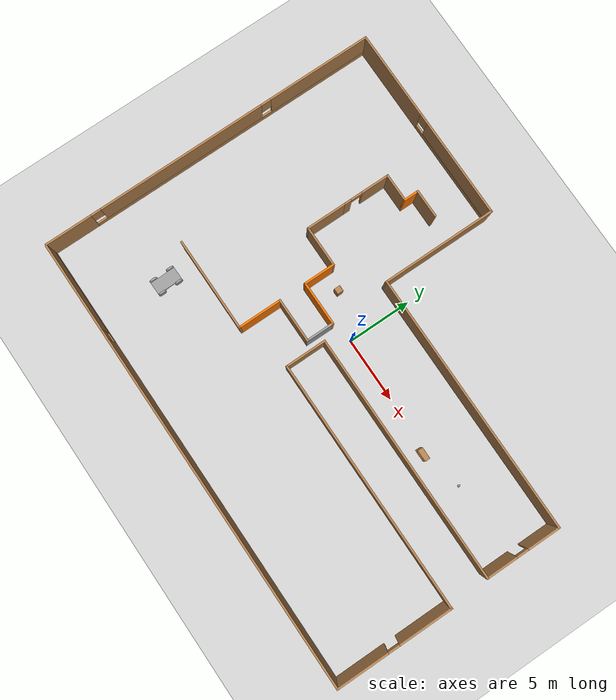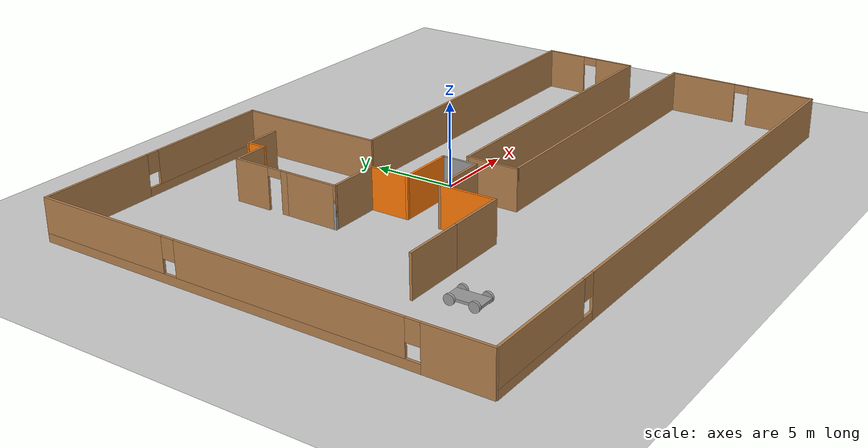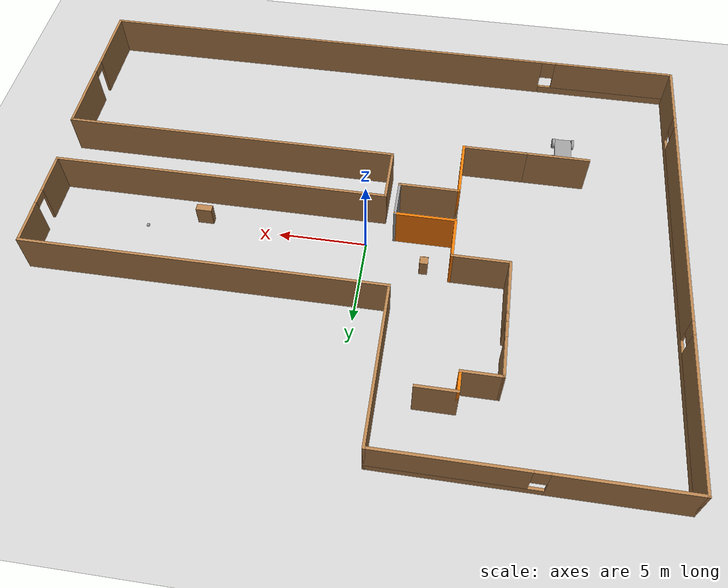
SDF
<sdf version="1.6">
 <world name="default">
  <light name="sun" type="directional">
   <pose>0 0 10 0 -0 0</pose>
   <diffuse>0.8 0.8 0.8 1</diffuse>
   <specular>0.2 0.2 0.2 1</specular>
   <attenuation>
    <range>1000</range>
    <constant>0.9</constant>
    <linear>0.01</linear>
    <quadratic>0.001</quadratic>
   </attenuation>
   <direction>-0.5 0.1 -0.9</direction>
  </light>
  <model name="ground_plane">
   <static>1</static>
   <link name="link">
    <collision name="collision">
     <geometry><plane><normal>0 0 1</normal><size>100 100</size></plane></geometry>
     <surface>
      <contact><collide_bitmask>65535</collide_bitmask></contact>
      <friction><ode><mu>100</mu><mu2>50</mu2></ode></friction>
     </surface>
    </collision>
    <visual name="visual">
     <cast_shadows>0</cast_shadows>
     <geometry><plane><normal>0 0 1</normal><size>100 100</size></plane></geometry>
     <material>
      <script><uri>file://media/materials/scripts/gazebo.material</uri><name>Gazebo/Grey</name></script>
     </material>
    </visual>
   </link>
  </model>
  <gravity>0 0 -9.8</gravity>
  <magnetic_field>6e-06 2.3e-05 -4.2e-05</magnetic_field>
  <atmosphere type="adiabatic"/>
  <physics name="default_physics" default="0" type="ode">
   <max_step_size>0.001</max_step_size>
   <real_time_factor>1</real_time_factor>
   <real_time_update_rate>1000</real_time_update_rate>
  </physics>
  <scene><ambient>0.4 0.4 0.4 1</ambient><background>0.7 0.7 0.7 1</background><shadows>1</shadows></scene>
  <spherical_coordinates>
   <surface_model>EARTH_WGS84</surface_model>
   <latitude_deg>0</latitude_deg>
   <longitude_deg>0</longitude_deg>
   <elevation>0</elevation>
   <heading_deg>0</heading_deg>
  </spherical_coordinates>
  <model name="mybuilding_project1">
   <pose>0.6613 -0.499434 0 0 -0 0</pose>
   <link name="Wall_0">
    <pose>-17.85 0.025 0 0 -0 1.5708</pose>
    <visual name="Wall_0_Visual_0">
     <pose>-11.6282 0 1.25 0 -0 0</pose>
     <geometry><box><size>3.74368 0.15 2.5</size></box></geometry>
     <material>
      <script><uri>file://media/materials/scripts/gazebo.material</uri><name>Gazebo/Wood</name></script>
      <ambient>0.435294 0.796078 0.67451 1</ambient>
     </material>
     <meta><layer>0</layer></meta>
    </visual>
    <collision name="Wall_0_Collision_0">
     <geometry><box><size>3.74368 0.15 2.5</size></box></geometry>
     <pose>-11.6282 0 1.25 0 -0 0</pose>
    </collision>
    <visual name="Wall_0_Visual_1">
     <pose>1.87184 0 0.25 0 -0 0</pose>
     <geometry><box><size>23.2563 0.15 0.5</size></box></geometry>
     <material>
      <script><uri>file://media/materials/scripts/gazebo.material</uri><name>Gazebo/Wood</name></script>
      <ambient>0.435294 0.796078 0.67451 1</ambient>
     </material>
     <meta><layer>0</layer></meta>
    </visual>
    <collision name="Wall_0_Collision_1">
     <geometry><box><size>23.2563 0.15 0.5</size></box></geometry>
     <pose>1.87184 0 0.25 0 -0 0</pose>
    </collision>
    <visual name="Wall_0_Visual_2">
     <pose>-2.24985 0 1.5 0 -0 0</pose>
     <geometry><box><size>13.4129 0.15 2</size></box></geometry>
     <material>
      <script><uri>file://media/materials/scripts/gazebo.material</uri><name>Gazebo/Wood</name></script>
      <ambient>0.435294 0.796078 0.67451 1</ambient>
     </material>
     <meta><layer>0</layer></meta>
    </visual>
    <collision name="Wall_0_Collision_2">
     <geometry><box><size>13.4129 0.15 2</size></box></geometry>
     <pose>-2.24985 0 1.5 0 -0 0</pose>
    </collision>
    <visual name="Wall_0_Visual_3">
     <pose>9.37831 0 1.5 0 -0 0</pose>
     <geometry><box><size>8.24338 0.15 2</size></box></geometry>
     <material>
      <script><uri>file://media/materials/scripts/gazebo.material</uri><name>Gazebo/Wood</name></script>
      <ambient>0.435294 0.796078 0.67451 1</ambient>
     </material>
     <meta><layer>0</layer></meta>
    </visual>
    <collision name="Wall_0_Collision_3">
     <geometry><box><size>8.24338 0.15 2</size></box></geometry>
     <pose>9.37831 0 1.5 0 -0 0</pose>
    </collision>
    <visual name="Wall_0_Visual_4">
     <pose>-9.35632 0 1.9 0 -0 0</pose>
     <geometry><box><size>0.8 0.15 1.2</size></box></geometry>
     <material>
      <script><uri>file://media/materials/scripts/gazebo.material</uri><name>Gazebo/Wood</name></script>
      <ambient>0.435294 0.796078 0.67451 1</ambient>
     </material>
     <meta><layer>0</layer></meta>
    </visual>
    <collision name="Wall_0_Collision_4">
     <geometry><box><size>0.8 0.15 1.2</size></box></geometry>
     <pose>-9.35632 0 1.9 0 -0 0</pose>
    </collision>
    <visual name="Wall_0_Visual_5">
     <pose>4.85662 0 1.9 0 -0 0</pose>
     <geometry><box><size>0.8 0.15 1.2</size></box></geometry>
     <material>
      <script><uri>file://media/materials/scripts/gazebo.material</uri><name>Gazebo/Wood</name></script>
      <ambient>0.435294 0.796078 0.67451 1</ambient>
     </material>
     <meta><layer>0</layer></meta>
    </visual>
    <collision name="Wall_0_Collision_5">
     <geometry><box><size>0.8 0.15 1.2</size></box></geometry>
     <pose>4.85662 0 1.9 0 -0 0</pose>
    </collision>
   </link>
   <link name="Wall_1">
    <pose>-10.175 13.45 0 0 -0 0</pose>
    <visual name="Wall_1_Visual_0">
     <pose>-4.28195 0 1.25 0 -0 0</pose>
     <geometry><box><size>6.9361 0.15 2.5</size></box></geometry>
     <material>
      <script><uri>file://media/materials/scripts/gazebo.material</uri><name>Gazebo/Wood</name></script>
      <ambient>0.435294 0.796078 0.67451 1</ambient>
     </material>
     <meta><layer>0</layer></meta>
    </visual>
    <collision name="Wall_1_Collision_0">
     <geometry><box><size>6.9361 0.15 2.5</size></box></geometry>
     <pose>-4.28195 0 1.25 0 -0 0</pose>
    </collision>
    <visual name="Wall_1_Visual_1">
     <pose>3.46805 0 0.25 0 -0 0</pose>
     <geometry><box><size>8.5639 0.15 0.5</size></box></geometry>
     <material>
      <script><uri>file://media/materials/scripts/gazebo.material</uri><name>Gazebo/Wood</name></script>
      <ambient>0.435294 0.796078 0.67451 1</ambient>
     </material>
     <meta><layer>0</layer></meta>
    </visual>
    <collision name="Wall_1_Collision_1">
     <geometry><box><size>8.5639 0.15 0.5</size></box></geometry>
     <pose>3.46805 0 0.25 0 -0 0</pose>
    </collision>
    <visual name="Wall_1_Visual_2">
     <pose>3.86805 0 1.5 0 -0 0</pose>
     <geometry><box><size>7.7639 0.15 2</size></box></geometry>
     <material>
      <script><uri>file://media/materials/scripts/gazebo.material</uri><name>Gazebo/Wood</name></script>
      <ambient>0.435294 0.796078 0.67451 1</ambient>
     </material>
     <meta><layer>0</layer></meta>
    </visual>
    <collision name="Wall_1_Collision_2">
     <geometry><box><size>7.7639 0.15 2</size></box></geometry>
     <pose>3.86805 0 1.5 0 -0 0</pose>
    </collision>
    <visual name="Wall_1_Visual_3">
     <pose>-0.413897 0 1.9 0 -0 0</pose>
     <geometry><box><size>0.8 0.15 1.2</size></box></geometry>
     <material>
      <script><uri>file://media/materials/scripts/gazebo.material</uri><name>Gazebo/Wood</name></script>
      <ambient>0.435294 0.796078 0.67451 1</ambient>
     </material>
     <meta><layer>0</layer></meta>
    </visual>
    <collision name="Wall_1_Collision_3">
     <geometry><box><size>0.8 0.15 1.2</size></box></geometry>
     <pose>-0.413897 0 1.9 0 -0 0</pose>
    </collision>
   </link>
   <link name="Wall_2">
    <collision name="Wall_2_Collision">
     <geometry><box><size>9 0.15 2.5</size></box></geometry>
     <pose>0 0 1.25 0 -0 0</pose>
    </collision>
    <visual name="Wall_2_Visual">
     <pose>0 0 1.25 0 -0 0</pose>
     <geometry><box><size>9 0.15 2.5</size></box></geometry>
     <material>
      <script><uri>file://media/materials/scripts/gazebo.material</uri><name>Gazebo/Wood</name></script>
      <ambient>0.435294 0.796078 0.67451 1</ambient>
     </material>
     <meta><layer>0</layer></meta>
    </visual>
    <pose>-2.5 9.025 0 0 -0 -1.5708</pose>
   </link>
   <link name="Wall_3">
    <collision name="Wall_3_Collision">
     <geometry><box><size>20.25 0.15 2.5</size></box></geometry>
     <pose>0 0 1.25 0 -0 0</pose>
    </collision>
    <visual name="Wall_3_Visual">
     <pose>0 0 1.25 0 -0 0</pose>
     <geometry><box><size>20.25 0.15 2.5</size></box></geometry>
     <material>
      <script><uri>file://media/materials/scripts/gazebo.material</uri><name>Gazebo/Wood</name></script>
      <ambient>0.435294 0.796078 0.67451 1</ambient>
     </material>
     <meta><layer>0</layer></meta>
    </visual>
    <pose>7.55 4.6 0 0 -0 0</pose>
   </link>
   <link name="Wall_4">
    <pose>17.6 1.675 0 0 -0 -1.5708</pose>
    <visual name="Wall_4_Visual_0">
     <pose>-1.69782 0 1.25 0 -0 0</pose>
     <geometry><box><size>2.60436 0.15 2.5</size></box></geometry>
     <material>
      <script><uri>file://media/materials/scripts/gazebo.material</uri><name>Gazebo/Wood</name></script>
      <ambient>0.435294 0.796078 0.67451 1</ambient>
     </material>
     <meta><layer>0</layer></meta>
    </visual>
    <collision name="Wall_4_Collision_0">
     <geometry><box><size>2.60436 0.15 2.5</size></box></geometry>
     <pose>-1.69782 0 1.25 0 -0 0</pose>
    </collision>
    <visual name="Wall_4_Visual_1">
     <pose>1.75218 0 1.25 0 -0 0</pose>
     <geometry><box><size>2.49564 0.15 2.5</size></box></geometry>
     <material>
      <script><uri>file://media/materials/scripts/gazebo.material</uri><name>Gazebo/Wood</name></script>
      <ambient>0.435294 0.796078 0.67451 1</ambient>
     </material>
     <meta><layer>0</layer></meta>
    </visual>
    <collision name="Wall_4_Collision_1">
     <geometry><box><size>2.49564 0.15 2.5</size></box></geometry>
     <pose>1.75218 0 1.25 0 -0 0</pose>
    </collision>
    <visual name="Wall_4_Visual_2">
     <pose>0.054358 0 2.25 0 -0 0</pose>
     <geometry><box><size>0.9 0.15 0.5</size></box></geometry>
     <material>
      <script><uri>file://media/materials/scripts/gazebo.material</uri><name>Gazebo/Wood</name></script>
      <ambient>0.435294 0.796078 0.67451 1</ambient>
     </material>
     <meta><layer>0</layer></meta>
    </visual>
    <collision name="Wall_4_Collision_2">
     <geometry><box><size>0.9 0.15 0.5</size></box></geometry>
     <pose>0.054358 0 2.25 0 -0 0</pose>
    </collision>
   </link>
   <link name="Wall_5">
    <collision name="Wall_5_Collision">
     <geometry><box><size>19.25 0.15 2.5</size></box></geometry>
     <pose>0 0 1.25 0 -0 0</pose>
    </collision>
    <visual name="Wall_5_Visual">
     <pose>0 0 1.25 0 -0 0</pose>
     <geometry><box><size>19.25 0.15 2.5</size></box></geometry>
     <material>
      <script><uri>file://media/materials/scripts/gazebo.material</uri><name>Gazebo/Wood</name></script>
      <ambient>0.435294 0.796078 0.67451 1</ambient>
     </material>
     <meta><layer>0</layer></meta>
    </visual>
    <pose>8.05 -1.25 0 0 -0 3.14159</pose>
   </link>
   <link name="Wall_6">
    <collision name="Wall_6_Collision">
     <geometry><box><size>3.25 0.15 2.5</size></box></geometry>
     <pose>0 0 1.25 0 -0 0</pose>
    </collision>
    <visual name="Wall_6_Visual">
     <pose>0 0 1.25 0 -0 0</pose>
     <geometry><box><size>3.25 0.15 2.5</size></box></geometry>
     <material>
      <script><uri>file://media/materials/scripts/gazebo.material</uri><name>Gazebo/Wood</name></script>
      <ambient>0.435294 0.796078 0.67451 1</ambient>
     </material>
     <meta><layer>0</layer></meta>
    </visual>
    <pose>-1.5 -2.8 0 0 -0 -1.5708</pose>
   </link>
   <link name="Wall_7">
    <collision name="Wall_7_Collision">
     <geometry><box><size>19.5 0.15 2.5</size></box></geometry>
     <pose>0 0 1.25 0 -0 0</pose>
    </collision>
    <visual name="Wall_7_Visual">
     <pose>0 0 1.25 0 -0 0</pose>
     <geometry><box><size>19.5 0.15 2.5</size></box></geometry>
     <material>
      <script><uri>file://media/materials/scripts/gazebo.material</uri><name>Gazebo/Wood</name></script>
      <ambient>0.435294 0.796078 0.67451 1</ambient>
     </material>
     <meta><layer>0</layer></meta>
    </visual>
    <pose>8.175 -4.35 0 0 -0 0</pose>
   </link>
   <link name="Wall_8">
    <pose>17.85 -8.9 0 0 -0 -1.5708</pose>
    <visual name="Wall_8_Visual_0">
     <pose>-2.50642 0 1.25 0 -0 0</pose>
     <geometry><box><size>4.23715 0.15 2.5</size></box></geometry>
     <material>
      <script><uri>file://media/materials/scripts/gazebo.material</uri><name>Gazebo/Wood</name></script>
      <ambient>0.435294 0.796078 0.67451 1</ambient>
     </material>
     <meta><layer>0</layer></meta>
    </visual>
    <collision name="Wall_8_Collision_0">
     <geometry><box><size>4.23715 0.15 2.5</size></box></geometry>
     <pose>-2.50642 0 1.25 0 -0 0</pose>
    </collision>
    <visual name="Wall_8_Visual_1">
     <pose>2.56858 0 1.25 0 -0 0</pose>
     <geometry><box><size>4.11285 0.15 2.5</size></box></geometry>
     <material>
      <script><uri>file://media/materials/scripts/gazebo.material</uri><name>Gazebo/Wood</name></script>
      <ambient>0.435294 0.796078 0.67451 1</ambient>
     </material>
     <meta><layer>0</layer></meta>
    </visual>
    <collision name="Wall_8_Collision_1">
     <geometry><box><size>4.11285 0.15 2.5</size></box></geometry>
     <pose>2.56858 0 1.25 0 -0 0</pose>
    </collision>
    <visual name="Wall_8_Visual_2">
     <pose>0.062153 0 2.25 0 -0 0</pose>
     <geometry><box><size>0.9 0.15 0.5</size></box></geometry>
     <material>
      <script><uri>file://media/materials/scripts/gazebo.material</uri><name>Gazebo/Wood</name></script>
      <ambient>0.435294 0.796078 0.67451 1</ambient>
     </material>
     <meta><layer>0</layer></meta>
    </visual>
    <collision name="Wall_8_Collision_2">
     <geometry><box><size>0.9 0.15 0.5</size></box></geometry>
     <pose>0.062153 0 2.25 0 -0 0</pose>
    </collision>
   </link>
   <link name="Wall_9">
    <pose>0.05 -13.45 0 0 -0 3.14159</pose>
    <visual name="Wall_9_Visual_0">
     <pose>-3.97187 0 1.25 0 -0 0</pose>
     <geometry><box><size>27.8063 0.15 2.5</size></box></geometry>
     <material>
      <script><uri>file://media/materials/scripts/gazebo.material</uri><name>Gazebo/Wood</name></script>
      <ambient>0.435294 0.796078 0.67451 1</ambient>
     </material>
     <meta><layer>0</layer></meta>
    </visual>
    <collision name="Wall_9_Collision_0">
     <geometry><box><size>27.8063 0.15 2.5</size></box></geometry>
     <pose>-3.97187 0 1.25 0 -0 0</pose>
    </collision>
    <visual name="Wall_9_Visual_1">
     <pose>13.9031 0 0.25 0 -0 0</pose>
     <geometry><box><size>7.94374 0.15 0.5</size></box></geometry>
     <material>
      <script><uri>file://media/materials/scripts/gazebo.material</uri><name>Gazebo/Wood</name></script>
      <ambient>0.435294 0.796078 0.67451 1</ambient>
     </material>
     <meta><layer>0</layer></meta>
    </visual>
    <collision name="Wall_9_Collision_1">
     <geometry><box><size>7.94374 0.15 0.5</size></box></geometry>
     <pose>13.9031 0 0.25 0 -0 0</pose>
    </collision>
    <visual name="Wall_9_Visual_2">
     <pose>14.3031 0 1.5 0 -0 0</pose>
     <geometry><box><size>7.14374 0.15 2</size></box></geometry>
     <material>
      <script><uri>file://media/materials/scripts/gazebo.material</uri><name>Gazebo/Wood</name></script>
      <ambient>0.435294 0.796078 0.67451 1</ambient>
     </material>
     <meta><layer>0</layer></meta>
    </visual>
    <collision name="Wall_9_Collision_2">
     <geometry><box><size>7.14374 0.15 2</size></box></geometry>
     <pose>14.3031 0 1.5 0 -0 0</pose>
    </collision>
    <visual name="Wall_9_Visual_3">
     <pose>10.3313 0 1.9 0 -0 0</pose>
     <geometry><box><size>0.8 0.15 1.2</size></box></geometry>
     <material>
      <script><uri>file://media/materials/scripts/gazebo.material</uri><name>Gazebo/Wood</name></script>
      <ambient>0.435294 0.796078 0.67451 1</ambient>
     </material>
     <meta><layer>0</layer></meta>
    </visual>
    <collision name="Wall_9_Collision_3">
     <geometry><box><size>0.8 0.15 1.2</size></box></geometry>
     <pose>10.3313 0 1.9 0 -0 0</pose>
    </collision>
   </link>
   <static>1</static>
  </model>
  <model name="myrobot_project1">
   <link name="link_0">
    <inertial>
     <mass>1</mass>
     <inertia>
      <ixx>0.166667</ixx>
      <ixy>0</ixy>
      <ixz>0</ixz>
      <iyy>0.166667</iyy>
      <iyz>0</iyz>
      <izz>0.166667</izz>
     </inertia>
    </inertial>
    <pose>-4.00666 -6.32135 0.247721 0 -0 0</pose>
    <visual name="visual">
     <geometry><box><size>1 2 0.15</size></box></geometry>
     <material>
      <lighting>1</lighting>
      <script><uri>file://media/materials/scripts/gazebo.material</uri><name>Gazebo/Grey</name></script>
      <shader type="pixel"><normal_map>__default__</normal_map></shader>
      <ambient>0.3 0.3 0.3 1</ambient>
      <diffuse>0.7 0.7 0.7 1</diffuse>
      <specular>0.01 0.01 0.01 1</specular>
      <emissive>0 0 0 1</emissive>
     </material>
    </visual>
    <collision name="collision">
     <geometry><box><size>1 2 0.15</size></box></geometry>
     <surface>
      <friction>
       <ode><mu>1</mu><mu2>1</mu2><fdir1>0 0 0</fdir1><slip1>0</slip1><slip2>0</slip2></ode>
       <torsional>
        <coefficient>1</coefficient>
        <patch_radius>0</patch_radius>
        <surface_radius>0</surface_radius>
        <use_patch_radius>1</use_patch_radius>
        <ode><slip>0</slip></ode>
       </torsional>
      </friction>
      <bounce><restitution_coefficient>0</restitution_coefficient><threshold>1e+06</threshold></bounce>
      <contact>
       <collide_without_contact>0</collide_without_contact>
       <collide_without_contact_bitmask>1</collide_without_contact_bitmask>
       <collide_bitmask>1</collide_bitmask>
       <ode>
        <soft_cfm>0</soft_cfm>
        <soft_erp>0.2</soft_erp>
        <kp>1e+13</kp>
        <kd>1</kd>
        <max_vel>0.01</max_vel>
        <min_depth>0</min_depth>
       </ode>
       <bullet>
        <split_impulse>1</split_impulse>
        <split_impulse_penetration_threshold>-0.01</split_impulse_penetration_threshold>
        <soft_cfm>0</soft_cfm>
        <soft_erp>0.2</soft_erp>
        <kp>1e+13</kp>
        <kd>1</kd>
       </bullet>
      </contact>
     </surface>
    </collision>
   </link>
   <link name="link_1">
    <inertial>
     <mass>1</mass>
     <inertia><ixx>0.145833</ixx><ixy>0</ixy><ixz>0</ixz><iyy>0.145833</iyy><iyz>0</iyz><izz>0.125</izz></inertia>
    </inertial>
    <pose>-4.58166 -5.62135 0.247721 6e-06 1.5707 6e-06</pose>
    <visual name="visual">
     <geometry><cylinder><radius>0.3</radius><length>0.15</length></cylinder></geometry>
     <material>
      <lighting>1</lighting>
      <script><uri>file://media/materials/scripts/gazebo.material</uri><name>Gazebo/Grey</name></script>
      <shader type="pixel"><normal_map>__default__</normal_map></shader>
      <ambient>0.3 0.3 0.3 1</ambient>
      <diffuse>0.7 0.7 0.7 1</diffuse>
      <specular>0.01 0.01 0.01 1</specular>
      <emissive>0 0 0 1</emissive>
     </material>
    </visual>
    <collision name="collision">
     <geometry><cylinder><radius>0.3</radius><length>0.15</length></cylinder></geometry>
     <surface>
      <friction>
       <ode><mu>1</mu><mu2>1</mu2><fdir1>0 0 0</fdir1><slip1>0</slip1><slip2>0</slip2></ode>
       <torsional>
        <coefficient>1</coefficient>
        <patch_radius>0</patch_radius>
        <surface_radius>0</surface_radius>
        <use_patch_radius>1</use_patch_radius>
        <ode><slip>0</slip></ode>
       </torsional>
      </friction>
      <bounce><restitution_coefficient>0</restitution_coefficient><threshold>1e+06</threshold></bounce>
      <contact>
       <collide_without_contact>0</collide_without_contact>
       <collide_without_contact_bitmask>1</collide_without_contact_bitmask>
       <collide_bitmask>1</collide_bitmask>
       <ode>
        <soft_cfm>0</soft_cfm>
        <soft_erp>0.2</soft_erp>
        <kp>1e+13</kp>
        <kd>1</kd>
        <max_vel>0.01</max_vel>
        <min_depth>0</min_depth>
       </ode>
       <bullet>
        <split_impulse>1</split_impulse>
        <split_impulse_penetration_threshold>-0.01</split_impulse_penetration_threshold>
        <soft_cfm>0</soft_cfm>
        <soft_erp>0.2</soft_erp>
        <kp>1e+13</kp>
        <kd>1</kd>
       </bullet>
      </contact>
     </surface>
    </collision>
   </link>
   <link name="link_1_clone">
    <inertial>
     <mass>1</mass>
     <inertia><ixx>0.145833</ixx><ixy>0</ixy><ixz>0</ixz><iyy>0.145833</iyy><iyz>0</iyz><izz>0.125</izz></inertia>
    </inertial>
    <pose>-3.43166 -5.62135 0.247721 6e-06 1.5707 6e-06</pose>
    <visual name="visual">
     <geometry><cylinder><radius>0.3</radius><length>0.15</length></cylinder></geometry>
     <material>
      <lighting>1</lighting>
      <script><uri>file://media/materials/scripts/gazebo.material</uri><name>Gazebo/Grey</name></script>
      <shader type="pixel"><normal_map>__default__</normal_map></shader>
      <ambient>0.3 0.3 0.3 1</ambient>
      <diffuse>0.7 0.7 0.7 1</diffuse>
      <specular>0.01 0.01 0.01 1</specular>
      <emissive>0 0 0 1</emissive>
     </material>
    </visual>
    <collision name="collision">
     <geometry><cylinder><radius>0.3</radius><length>0.15</length></cylinder></geometry>
     <surface>
      <friction>
       <ode><mu>1</mu><mu2>1</mu2><fdir1>0 0 0</fdir1><slip1>0</slip1><slip2>0</slip2></ode>
       <torsional>
        <coefficient>1</coefficient>
        <patch_radius>0</patch_radius>
        <surface_radius>0</surface_radius>
        <use_patch_radius>1</use_patch_radius>
        <ode><slip>0</slip></ode>
       </torsional>
      </friction>
      <bounce><restitution_coefficient>0</restitution_coefficient><threshold>1e+06</threshold></bounce>
      <contact>
       <collide_without_contact>0</collide_without_contact>
       <collide_without_contact_bitmask>1</collide_without_contact_bitmask>
       <collide_bitmask>1</collide_bitmask>
       <ode>
        <soft_cfm>0</soft_cfm>
        <soft_erp>0.2</soft_erp>
        <kp>1e+13</kp>
        <kd>1</kd>
        <max_vel>0.01</max_vel>
        <min_depth>0</min_depth>
       </ode>
       <bullet>
        <split_impulse>1</split_impulse>
        <split_impulse_penetration_threshold>-0.01</split_impulse_penetration_threshold>
        <soft_cfm>0</soft_cfm>
        <soft_erp>0.2</soft_erp>
        <kp>1e+13</kp>
        <kd>1</kd>
       </bullet>
      </contact>
     </surface>
    </collision>
   </link>
   <link name="link_1_clone_0">
    <inertial>
     <mass>1</mass>
     <inertia><ixx>0.145833</ixx><ixy>0</ixy><ixz>0</ixz><iyy>0.145833</iyy><iyz>0</iyz><izz>0.125</izz></inertia>
    </inertial>
    <pose>-3.43166 -7.02135 0.247721 6e-06 1.5707 6e-06</pose>
    <visual name="visual">
     <geometry><cylinder><radius>0.3</radius><length>0.15</length></cylinder></geometry>
     <material>
      <lighting>1</lighting>
      <script><uri>file://media/materials/scripts/gazebo.material</uri><name>Gazebo/Grey</name></script>
      <shader type="pixel"><normal_map>__default__</normal_map></shader>
      <ambient>0.3 0.3 0.3 1</ambient>
      <diffuse>0.7 0.7 0.7 1</diffuse>
      <specular>0.01 0.01 0.01 1</specular>
      <emissive>0 0 0 1</emissive>
     </material>
    </visual>
    <collision name="collision">
     <geometry><cylinder><radius>0.3</radius><length>0.15</length></cylinder></geometry>
     <surface>
      <friction>
       <ode><mu>1</mu><mu2>1</mu2><fdir1>0 0 0</fdir1><slip1>0</slip1><slip2>0</slip2></ode>
       <torsional>
        <coefficient>1</coefficient>
        <patch_radius>0</patch_radius>
        <surface_radius>0</surface_radius>
        <use_patch_radius>1</use_patch_radius>
        <ode><slip>0</slip></ode>
       </torsional>
      </friction>
      <bounce><restitution_coefficient>0</restitution_coefficient><threshold>1e+06</threshold></bounce>
      <contact>
       <collide_without_contact>0</collide_without_contact>
       <collide_without_contact_bitmask>1</collide_without_contact_bitmask>
       <collide_bitmask>1</collide_bitmask>
       <ode>
        <soft_cfm>0</soft_cfm>
        <soft_erp>0.2</soft_erp>
        <kp>1e+13</kp>
        <kd>1</kd>
        <max_vel>0.01</max_vel>
        <min_depth>0</min_depth>
       </ode>
       <bullet>
        <split_impulse>1</split_impulse>
        <split_impulse_penetration_threshold>-0.01</split_impulse_penetration_threshold>
        <soft_cfm>0</soft_cfm>
        <soft_erp>0.2</soft_erp>
        <kp>1e+13</kp>
        <kd>1</kd>
       </bullet>
      </contact>
     </surface>
    </collision>
   </link>
   <link name="link_1_clone_1">
    <inertial>
     <mass>1</mass>
     <inertia><ixx>0.145833</ixx><ixy>0</ixy><ixz>0</ixz><iyy>0.145833</iyy><iyz>0</iyz><izz>0.125</izz></inertia>
    </inertial>
    <pose>-4.58166 -7.02135 0.247721 6e-06 1.5707 6e-06</pose>
    <visual name="visual">
     <geometry><cylinder><radius>0.3</radius><length>0.15</length></cylinder></geometry>
     <material>
      <lighting>1</lighting>
      <script><uri>file://media/materials/scripts/gazebo.material</uri><name>Gazebo/Grey</name></script>
      <shader type="pixel"><normal_map>__default__</normal_map></shader>
      <ambient>0.3 0.3 0.3 1</ambient>
      <diffuse>0.7 0.7 0.7 1</diffuse>
      <specular>0.01 0.01 0.01 1</specular>
      <emissive>0 0 0 1</emissive>
     </material>
    </visual>
    <collision name="collision">
     <geometry><cylinder><radius>0.3</radius><length>0.15</length></cylinder></geometry>
     <surface>
      <friction>
       <ode><mu>1</mu><mu2>1</mu2><fdir1>0 0 0</fdir1><slip1>0</slip1><slip2>0</slip2></ode>
       <torsional>
        <coefficient>1</coefficient>
        <patch_radius>0</patch_radius>
        <surface_radius>0</surface_radius>
        <use_patch_radius>1</use_patch_radius>
        <ode><slip>0</slip></ode>
       </torsional>
      </friction>
      <bounce><restitution_coefficient>0</restitution_coefficient><threshold>1e+06</threshold></bounce>
      <contact>
       <collide_without_contact>0</collide_without_contact>
       <collide_without_contact_bitmask>1</collide_without_contact_bitmask>
       <collide_bitmask>1</collide_bitmask>
       <ode>
        <soft_cfm>0</soft_cfm>
        <soft_erp>0.2</soft_erp>
        <kp>1e+13</kp>
        <kd>1</kd>
        <max_vel>0.01</max_vel>
        <min_depth>0</min_depth>
       </ode>
       <bullet>
        <split_impulse>1</split_impulse>
        <split_impulse_penetration_threshold>-0.01</split_impulse_penetration_threshold>
        <soft_cfm>0</soft_cfm>
        <soft_erp>0.2</soft_erp>
        <kp>1e+13</kp>
        <kd>1</kd>
       </bullet>
      </contact>
     </surface>
    </collision>
   </link>
   <joint name="link_0_JOINT_0" type="revolute">
    <parent>link_0</parent>
    <child>link_1</child>
    <axis>
     <xyz>0 0 1</xyz>
     <use_parent_model_frame>0</use_parent_model_frame>
     <limit>
      <lower>-1.79769e+308</lower>
      <upper>1.79769e+308</upper>
      <effort>-1</effort>
      <velocity>-1</velocity>
     </limit>
     <dynamics>
      <spring_reference>0</spring_reference>
      <spring_stiffness>0</spring_stiffness>
      <damping>0</damping>
      <friction>0</friction>
     </dynamics>
    </axis>
    <physics>
     <ode><limit><cfm>0</cfm><erp>0.2</erp></limit><suspension><cfm>0</cfm><erp>0.2</erp></suspension></ode>
    </physics>
   </joint>
   <joint name="link_0_JOINT_1" type="revolute">
    <parent>link_0</parent>
    <child>link_1_clone</child>
    <axis>
     <xyz>0 0 1</xyz>
     <use_parent_model_frame>0</use_parent_model_frame>
     <limit>
      <lower>-1.79769e+308</lower>
      <upper>1.79769e+308</upper>
      <effort>-1</effort>
      <velocity>-1</velocity>
     </limit>
     <dynamics>
      <spring_reference>0</spring_reference>
      <spring_stiffness>0</spring_stiffness>
      <damping>0</damping>
      <friction>0</friction>
     </dynamics>
    </axis>
    <physics>
     <ode><limit><cfm>0</cfm><erp>0.2</erp></limit><suspension><cfm>0</cfm><erp>0.2</erp></suspension></ode>
    </physics>
   </joint>
   <joint name="link_0_JOINT_2" type="revolute">
    <parent>link_0</parent>
    <child>link_1_clone_1</child>
    <axis>
     <xyz>0 0 1</xyz>
     <use_parent_model_frame>0</use_parent_model_frame>
     <limit>
      <lower>-1.79769e+308</lower>
      <upper>1.79769e+308</upper>
      <effort>-1</effort>
      <velocity>-1</velocity>
     </limit>
     <dynamics>
      <spring_reference>0</spring_reference>
      <spring_stiffness>0</spring_stiffness>
      <damping>0</damping>
      <friction>0</friction>
     </dynamics>
    </axis>
    <physics>
     <ode><limit><cfm>0</cfm><erp>0.2</erp></limit><suspension><cfm>0</cfm><erp>0.2</erp></suspension></ode>
    </physics>
   </joint>
   <joint name="link_0_JOINT_3" type="revolute">
    <parent>link_0</parent>
    <child>link_1_clone_0</child>
    <axis>
     <xyz>0 0 1</xyz>
     <use_parent_model_frame>0</use_parent_model_frame>
     <limit>
      <lower>-1.79769e+308</lower>
      <upper>1.79769e+308</upper>
      <effort>-1</effort>
      <velocity>-1</velocity>
     </limit>
     <dynamics>
      <spring_reference>0</spring_reference>
      <spring_stiffness>0</spring_stiffness>
      <damping>0</damping>
      <friction>0</friction>
     </dynamics>
    </axis>
    <physics>
     <ode><limit><cfm>0</cfm><erp>0.2</erp></limit><suspension><cfm>0</cfm><erp>0.2</erp></suspension></ode>
    </physics>
   </joint>
   <static>0</static>
   <pose>-7.02796 -2.08578 0.052286 0 -0 0.015956</pose>
  </model>
  <model name="my_ball">
   <link name="link_0">
    <inertial>
     <mass>1</mass>
     <inertia><ixx>0.1</ixx><ixy>0</ixy><ixz>0</ixz><iyy>0.1</iyy><iyz>0</iyz><izz>0.1</izz></inertia>
    </inertial>
    <visual name="visual">
     <geometry><sphere><radius>0.1</radius></sphere></geometry>
     <material>
      <lighting>1</lighting>
      <script><uri>file://media/materials/scripts/gazebo.material</uri><name>Gazebo/Grey</name></script>
      <shader type="pixel"><normal_map>__default__</normal_map></shader>
      <ambient>1 1 1 1</ambient>
      <diffuse>1 1 1 1</diffuse>
      <specular>1 1 1 1</specular>
      <emissive>1 1 1 1</emissive>
     </material>
    </visual>
    <collision name="collision">
     <geometry><sphere><radius>0.1</radius></sphere></geometry>
     <surface>
      <friction>
       <ode><mu>1</mu><mu2>1</mu2><fdir1>0 0 0</fdir1><slip1>0</slip1><slip2>0</slip2></ode>
       <torsional>
        <coefficient>1</coefficient>
        <patch_radius>0</patch_radius>
        <surface_radius>0</surface_radius>
        <use_patch_radius>1</use_patch_radius>
        <ode><slip>0</slip></ode>
       </torsional>
      </friction>
      <bounce><restitution_coefficient>0</restitution_coefficient><threshold>1e+06</threshold></bounce>
      <contact>
       <collide_without_contact>0</collide_without_contact>
       <collide_without_contact_bitmask>1</collide_without_contact_bitmask>
       <collide_bitmask>1</collide_bitmask>
       <ode>
        <soft_cfm>0</soft_cfm>
        <soft_erp>0.2</soft_erp>
        <kp>1e+13</kp>
        <kd>1</kd>
        <max_vel>0.01</max_vel>
        <min_depth>0</min_depth>
       </ode>
       <bullet>
        <split_impulse>1</split_impulse>
        <split_impulse_penetration_threshold>-0.01</split_impulse_penetration_threshold>
        <soft_cfm>0</soft_cfm>
        <soft_erp>0.2</soft_erp>
        <kp>1e+13</kp>
        <kd>1</kd>
       </bullet>
      </contact>
     </surface>
    </collision>
   </link>
   <static>0</static>
   <pose>12.6225 0.48743 0.1 0 -0 0</pose>
  </model>
  <model name="Untitled">
   <pose>-6.805 1.75 0 0 -0 0</pose>
   <link name="Wall_2">
    <collision name="Wall_2_Collision">
     <geometry><box><size>3.5 0.15 2.5</size></box></geometry>
     <pose>0 0 1.25 0 -0 0</pose>
    </collision>
    <visual name="Wall_2_Visual">
     <pose>0 0 1.25 0 -0 0</pose>
     <geometry><box><size>3.5 0.15 2.5</size></box></geometry>
     <material>
      <script><uri>file://media/materials/scripts/gazebo.material</uri><name>Gazebo/Wood</name></script>
      <ambient>0.996078 0.47451 0.0196078 1</ambient>
     </material>
     <meta><layer>0</layer></meta>
    </visual>
    <pose>3.6 -4.45 0 0 -0 0</pose>
   </link>
   <link name="Wall_24">
    <collision name="Wall_24_Collision">
     <geometry><box><size>3.25 0.15 2.5</size></box></geometry>
     <pose>0 0 1.25 0 -0 0</pose>
    </collision>
    <visual name="Wall_24_Visual">
     <pose>0 0 1.25 0 -0 0</pose>
     <geometry><box><size>3.25 0.15 2.5</size></box></geometry>
     <material>
      <script><uri>file://media/materials/scripts/gazebo.material</uri><name>Gazebo/Wood</name></script>
      <ambient>0.996078 0.47451 0.0196078 1</ambient>
     </material>
     <meta><layer>0</layer></meta>
    </visual>
    <pose>-1.175 1.55 0 0 -0 1.5708</pose>
   </link>
   <link name="Wall_26">
    <pose>-1.175 4.9 0 0 -0 1.5708</pose>
    <visual name="Wall_26_Visual_0">
     <pose>-1.5825 0 1.25 0 -0 0</pose>
     <geometry><box><size>0.585 0.15 2.5</size></box></geometry>
     <material>
      <script><uri>file://media/materials/scripts/gazebo.material</uri><name>Gazebo/Wood</name></script>
      <ambient>0.996078 0.47451 0.0196078 1</ambient>
     </material>
     <meta><layer>0</layer></meta>
    </visual>
    <collision name="Wall_26_Collision_0">
     <geometry><box><size>0.585 0.15 2.5</size></box></geometry>
     <pose>-1.5825 0 1.25 0 -0 0</pose>
    </collision>
    <visual name="Wall_26_Visual_1">
     <pose>0.7425 0 1.25 0 -0 0</pose>
     <geometry><box><size>2.265 0.15 2.5</size></box></geometry>
     <material>
      <script><uri>file://media/materials/scripts/gazebo.material</uri><name>Gazebo/Wood</name></script>
      <ambient>0.996078 0.47451 0.0196078 1</ambient>
     </material>
     <meta><layer>0</layer></meta>
    </visual>
    <collision name="Wall_26_Collision_1">
     <geometry><box><size>2.265 0.15 2.5</size></box></geometry>
     <pose>0.7425 0 1.25 0 -0 0</pose>
    </collision>
    <visual name="Wall_26_Visual_2">
     <pose>-0.84 0 2.25 0 -0 0</pose>
     <geometry><box><size>0.9 0.15 0.5</size></box></geometry>
     <material>
      <script><uri>file://media/materials/scripts/gazebo.material</uri><name>Gazebo/Wood</name></script>
      <ambient>0.996078 0.47451 0.0196078 1</ambient>
     </material>
     <meta><layer>0</layer></meta>
    </visual>
    <collision name="Wall_26_Collision_2">
     <geometry><box><size>0.9 0.15 0.5</size></box></geometry>
     <pose>-0.84 0 2.25 0 -0 0</pose>
    </collision>
   </link>
   <link name="Wall_27">
    <collision name="Wall_27_Collision">
     <geometry><box><size>2.25 0.15 2.5</size></box></geometry>
     <pose>0 0 1.25 0 -0 0</pose>
    </collision>
    <visual name="Wall_27_Visual">
     <pose>0 0 1.25 0 -0 0</pose>
     <geometry><box><size>2.25 0.15 2.5</size></box></geometry>
     <material>
      <script><uri>file://media/materials/scripts/gazebo.material</uri><name>Gazebo/Wood</name></script>
      <ambient>0.996078 0.47451 0.0196078 1</ambient>
     </material>
     <meta><layer>0</layer></meta>
    </visual>
    <pose>-0.125 6.7 0 0 -0 0</pose>
   </link>
   <link name="Wall_28">
    <collision name="Wall_28_Collision">
     <geometry><box><size>1.25 0.15 2.5</size></box></geometry>
     <pose>0 0 1.25 0 -0 0</pose>
    </collision>
    <visual name="Wall_28_Visual">
     <pose>0 0 1.25 0 -0 0</pose>
     <geometry><box><size>1.25 0.15 2.5</size></box></geometry>
     <material>
      <script><uri>file://media/materials/scripts/gazebo.material</uri><name>Gazebo/Grey</name></script>
      <ambient>0.996078 0.47451 0.0196078 1</ambient>
     </material>
     <meta><layer>0</layer></meta>
    </visual>
    <pose>0.925 7.25 0 0 -0 1.5708</pose>
   </link>
   <link name="Wall_29">
    <collision name="Wall_29_Collision">
     <geometry><box><size>2.25 0.15 2.5</size></box></geometry>
     <pose>0 0 1.25 0 -0 0</pose>
    </collision>
    <visual name="Wall_29_Visual">
     <pose>0 0 1.25 0 -0 0</pose>
     <geometry><box><size>2.25 0.15 2.5</size></box></geometry>
     <material>
      <script><uri>file://media/materials/scripts/gazebo.material</uri><name>Gazebo/Wood</name></script>
      <ambient>0.996078 0.47451 0.0196078 1</ambient>
     </material>
     <meta><layer>0</layer></meta>
    </visual>
    <pose>1.975 7.8 0 0 -0 0</pose>
   </link>
   <link name="Wall_3">
    <collision name="Wall_3_Collision">
     <geometry><box><size>2.25 0.15 2.5</size></box></geometry>
     <pose>0 0 1.25 0 -0 0</pose>
    </collision>
    <visual name="Wall_3_Visual">
     <pose>0 0 1.25 0 -0 0</pose>
     <geometry><box><size>2.25 0.15 2.5</size></box></geometry>
     <material>
      <script><uri>file://media/materials/scripts/gazebo.material</uri><name>Gazebo/Grey</name></script>
      <ambient>1 1 1 1</ambient>
     </material>
     <meta><layer>0</layer></meta>
    </visual>
    <pose>5.275 -3.4 0 0 -0 1.5708</pose>
   </link>
   <link name="Wall_32">
    <collision name="Wall_32_Collision">
     <geometry><box><size>3.5 0.15 2.5</size></box></geometry>
     <pose>0 0 1.25 0 -0 0</pose>
    </collision>
    <visual name="Wall_32_Visual">
     <pose>0 0 1.25 0 -0 0</pose>
     <geometry><box><size>3.5 0.15 2.5</size></box></geometry>
     <material>
      <script><uri>file://media/materials/scripts/gazebo.material</uri><name>Gazebo/Grey</name></script>
      <ambient>0.996078 0.47451 0.0196078 1</ambient>
     </material>
     <meta><layer>0</layer></meta>
    </visual>
    <pose>1.925 -6.125 0 0 0 -1.5708</pose>
   </link>
   <link name="Wall_33">
    <collision name="Wall_33_Collision">
     <geometry><box><size>3.75 0.15 2.5</size></box></geometry>
     <pose>0 0 1.25 0 -0 0</pose>
    </collision>
    <visual name="Wall_33_Visual">
     <pose>0 0 1.25 0 -0 0</pose>
     <geometry><box><size>3.75 0.15 2.5</size></box></geometry>
     <material>
      <script><uri>file://media/materials/scripts/gazebo.material</uri><name>Gazebo/Wood</name></script>
      <ambient>0.996078 0.47451 0.0196078 1</ambient>
     </material>
     <meta><layer>0</layer></meta>
    </visual>
    <pose>0.125 -7.8 0 0 -0 3.14159</pose>
   </link>
   <link name="Wall_35">
    <collision name="Wall_35_Collision">
     <geometry><box><size>3.75 0.15 2.5</size></box></geometry>
     <pose>0 0 1.25 0 -0 0</pose>
    </collision>
    <visual name="Wall_35_Visual">
     <pose>0 0 1.25 0 -0 0</pose>
     <geometry><box><size>3.75 0.15 2.5</size></box></geometry>
     <material>
      <script><uri>file://media/materials/scripts/gazebo.material</uri><name>Gazebo/Wood</name></script>
      <ambient>0.996078 0.47451 0.0196078 1</ambient>
     </material>
     <meta><layer>0</layer></meta>
    </visual>
    <pose>-3.475 -7.8 0 0 -0 3.14159</pose>
   </link>
   <link name="Wall_4">
    <collision name="Wall_4_Collision">
     <geometry><box><size>3.5 0.15 2.5</size></box></geometry>
     <pose>0 0 1.25 0 -0 0</pose>
    </collision>
    <visual name="Wall_4_Visual">
     <pose>0 0 1.25 0 -0 0</pose>
     <geometry><box><size>3.5 0.15 2.5</size></box></geometry>
     <material>
      <script><uri>file://media/materials/scripts/gazebo.material</uri><name>Gazebo/Grey</name></script>
      <ambient>0.996078 0.47451 0.0196078 1</ambient>
     </material>
     <meta><layer>0</layer></meta>
    </visual>
    <pose>3.6 -2.35 0 0 -0 3.14159</pose>
   </link>
   <link name="Wall_7">
    <collision name="Wall_7_Collision">
     <geometry><box><size>2.5 0.15 2.5</size></box></geometry>
     <pose>0 0 1.25 0 -0 0</pose>
    </collision>
    <visual name="Wall_7_Visual">
     <pose>0 0 1.25 0 -0 0</pose>
     <geometry><box><size>2.5 0.15 2.5</size></box></geometry>
     <material>
      <script><uri>file://media/materials/scripts/gazebo.material</uri><name>Gazebo/Grey</name></script>
      <ambient>0.996078 0.47451 0.0196078 1</ambient>
     </material>
     <meta><layer>0</layer></meta>
    </visual>
    <pose>1.925 -1.175 0 0 -0 1.5708</pose>
   </link>
   <link name="Wall_8">
    <collision name="Wall_8_Collision">
     <geometry><box><size>3.25 0.15 2.5</size></box></geometry>
     <pose>0 0 1.25 0 -0 0</pose>
    </collision>
    <visual name="Wall_8_Visual">
     <pose>0 0 1.25 0 -0 0</pose>
     <geometry><box><size>3.25 0.15 2.5</size></box></geometry>
     <material>
      <script><uri>file://media/materials/scripts/gazebo.material</uri><name>Gazebo/Wood</name></script>
      <ambient>0.996078 0.47451 0.0196078 1</ambient>
     </material>
     <meta><layer>0</layer></meta>
    </visual>
    <pose>0.375 0 0 0 -0 3.14159</pose>
   </link>
   <link name="Wall_9">
    <collision name="Wall_9_Collision">
     <geometry><box><size>0.16 0.15 2.5</size></box></geometry>
     <pose>0 0 1.25 0 -0 0</pose>
    </collision>
    <visual name="Wall_9_Visual">
     <pose>0 0 1.25 0 -0 0</pose>
     <geometry><box><size>0.16 0.15 2.5</size></box></geometry>
     <material>
      <script><uri>file://media/materials/scripts/gazebo.material</uri><name>Gazebo/Grey</name></script>
      <ambient>1 1 1 1</ambient>
     </material>
     <meta><layer>0</layer></meta>
    </visual>
    <pose>-1.17 0 0 0 -0 0</pose>
   </link>
   <static>1</static>
  </model>
  <model name="bookshelf">
   <static>1</static>
   <link name="link">
    <inertial><mass>1</mass></inertial>
    <collision name="back">
     <pose>0 0.005 0.6 0 -0 0</pose>
     <geometry><box><size>0.9 0.01 1.2</size></box></geometry>
    </collision>
    <visual name="visual1">
     <pose>0 0.005 0.6 0 -0 0</pose>
     <geometry><box><size>0.9 0.01 1.2</size></box></geometry>
     <material>
      <script><uri>file://media/materials/scripts/gazebo.material</uri><name>Gazebo/Wood</name></script>
     </material>
    </visual>
    <collision name="left_side">
     <pose>0.45 -0.195 0.6 0 -0 0</pose>
     <geometry><box><size>0.02 0.4 1.2</size></box></geometry>
    </collision>
    <visual name="visual2">
     <pose>0.45 -0.195 0.6 0 -0 0</pose>
     <geometry><box><size>0.02 0.4 1.2</size></box></geometry>
     <material>
      <script><uri>file://media/materials/scripts/gazebo.material</uri><name>Gazebo/Wood</name></script>
     </material>
    </visual>
    <collision name="right_side">
     <pose>-0.45 -0.195 0.6 0 -0 0</pose>
     <geometry><box><size>0.02 0.4 1.2</size></box></geometry>
    </collision>
    <visual name="visual3">
     <pose>-0.45 -0.195 0.6 0 -0 0</pose>
     <geometry><box><size>0.02 0.4 1.2</size></box></geometry>
     <material>
      <script><uri>file://media/materials/scripts/gazebo.material</uri><name>Gazebo/Wood</name></script>
     </material>
    </visual>
    <collision name="bottom">
     <pose>0 -0.195 0.03 0 -0 0</pose>
     <geometry><box><size>0.88 0.4 0.06</size></box></geometry>
    </collision>
    <visual name="visual4">
     <pose>0 -0.195 0.03 0 -0 0</pose>
     <geometry><box><size>0.88 0.4 0.06</size></box></geometry>
     <material>
      <script><uri>file://media/materials/scripts/gazebo.material</uri><name>Gazebo/Wood</name></script>
     </material>
    </visual>
    <collision name="top">
     <pose>0 -0.195 1.19 0 -0 0</pose>
     <geometry><box><size>0.88 0.4 0.02</size></box></geometry>
    </collision>
    <visual name="visual5">
     <pose>0 -0.195 1.19 0 -0 0</pose>
     <geometry><box><size>0.88 0.4 0.02</size></box></geometry>
     <material>
      <script><uri>file://media/materials/scripts/gazebo.material</uri><name>Gazebo/Wood</name></script>
     </material>
    </visual>
    <collision name="low_shelf">
     <pose>0 -0.195 0.43 0 -0 0</pose>
     <geometry><box><size>0.88 0.4 0.02</size></box></geometry>
    </collision>
    <visual name="visual6">
     <pose>0 -0.195 0.43 0 -0 0</pose>
     <geometry><box><size>0.88 0.4 0.02</size></box></geometry>
     <material>
      <script><uri>file://media/materials/scripts/gazebo.material</uri><name>Gazebo/Wood</name></script>
     </material>
    </visual>
    <collision name="high_shelf">
     <pose>0 -0.195 0.8 0 -0 0</pose>
     <geometry><box><size>0.88 0.4 0.02</size></box></geometry>
    </collision>
    <visual name="visual7">
     <pose>0 -0.195 0.8 0 -0 0</pose>
     <geometry><box><size>0.88 0.4 0.02</size></box></geometry>
     <material>
      <script><uri>file://media/materials/scripts/gazebo.material</uri><name>Gazebo/Wood</name></script>
     </material>
    </visual>
   </link>
   <pose>9.38178 -0.220524 0 0 -0 0</pose>
  </model>
  <model name="cabinet">
   <static>1</static>
   <link name="cabinet_bottom_plate">
    <inertial>
     <pose>0 0 -1 0 -0 0</pose>
     <inertia><ixx>2.05</ixx><ixy>0</ixy><ixz>0</ixz><iyy>2.05</iyy><iyz>0</iyz><izz>2.05</izz></inertia>
     <mass>25</mass>
    </inertial>
    <collision name="cabinet_bottom_plate_geom">
     <pose>0 0 0.01 0 -0 0</pose>
     <geometry><box><size>0.45 0.45 0.02</size></box></geometry>
    </collision>
    <visual name="cabinet_bottom_plate_geom_visual">
     <pose>0 0 0.01 0 -0 0</pose>
     <geometry><box><size>0.45 0.45 0.02</size></box></geometry>
     <material>
      <script><uri>file://media/materials/scripts/gazebo.material</uri><name>Gazebo/Wood</name></script>
     </material>
    </visual>
    <collision name="cabinet_bottom_plate_geom_cabinet_back_plate">
     <pose>0.235 0 0.51 0 -0 0</pose>
     <geometry><box><size>0.02 0.45 1.02</size></box></geometry>
    </collision>
    <visual name="cabinet_bottom_plate_geom_cabinet_back_plate_visual">
     <pose>0.235 0 0.51 0 -0 0</pose>
     <geometry><box><size>0.02 0.45 1.02</size></box></geometry>
     <material>
      <script><uri>file://media/materials/scripts/gazebo.material</uri><name>Gazebo/Wood</name></script>
     </material>
    </visual>
    <collision name="cabinet_bottom_plate_geom_cabinet_left_plate">
     <pose>0 0.235 0.51 0 -0 0</pose>
     <geometry><box><size>0.45 0.02 1.02</size></box></geometry>
    </collision>
    <visual name="cabinet_bottom_plate_geom_cabinet_left_plate_visual">
     <pose>0 0.235 0.51 0 -0 0</pose>
     <geometry><box><size>0.45 0.02 1.02</size></box></geometry>
     <material>
      <script><uri>file://media/materials/scripts/gazebo.material</uri><name>Gazebo/Wood</name></script>
     </material>
    </visual>
    <collision name="cabinet_bottom_plate_geom_cabinet_middle_plate">
     <pose>0 0 0.51 0 -0 0</pose>
     <geometry><box><size>0.45 0.45 0.02</size></box></geometry>
    </collision>
    <visual name="cabinet_bottom_plate_geom_cabinet_middle_plate_visual">
     <pose>0 0 0.51 0 -0 0</pose>
     <geometry><box><size>0.45 0.45 0.02</size></box></geometry>
     <material>
      <script><uri>file://media/materials/scripts/gazebo.material</uri><name>Gazebo/Wood</name></script>
     </material>
    </visual>
    <collision name="cabinet_bottom_plate_geom_cabinet_right_plate">
     <pose>0 -0.235 0.51 0 -0 0</pose>
     <geometry><box><size>0.45 0.02 1.02</size></box></geometry>
    </collision>
    <visual name="cabinet_bottom_plate_geom_cabinet_right_plate_visual">
     <pose>0 -0.235 0.51 0 -0 0</pose>
     <geometry><box><size>0.45 0.02 1.02</size></box></geometry>
     <material>
      <script><uri>file://media/materials/scripts/gazebo.material</uri><name>Gazebo/Wood</name></script>
     </material>
    </visual>
    <collision name="cabinet_bottom_plate_geom_cabinet_top_plate">
     <pose>0 0 1.01 0 -0 0</pose>
     <geometry><box><size>0.45 0.45 0.02</size></box></geometry>
    </collision>
    <visual name="cabinet_bottom_plate_geom_cabinet_top_plate_visual">
     <pose>0 0 1.01 0 -0 0</pose>
     <geometry><box><size>0.45 0.45 0.02</size></box></geometry>
     <material>
      <script><uri>file://media/materials/scripts/gazebo.material</uri><name>Gazebo/Wood</name></script>
     </material>
    </visual>
   </link>
   <pose>-3.41224 1.26562 0 0 -0 0</pose>
  </model>
  <plugin filename="libcollision_map_creator.so" name="collision_map_creator"/>
 </world>
</sdf>
